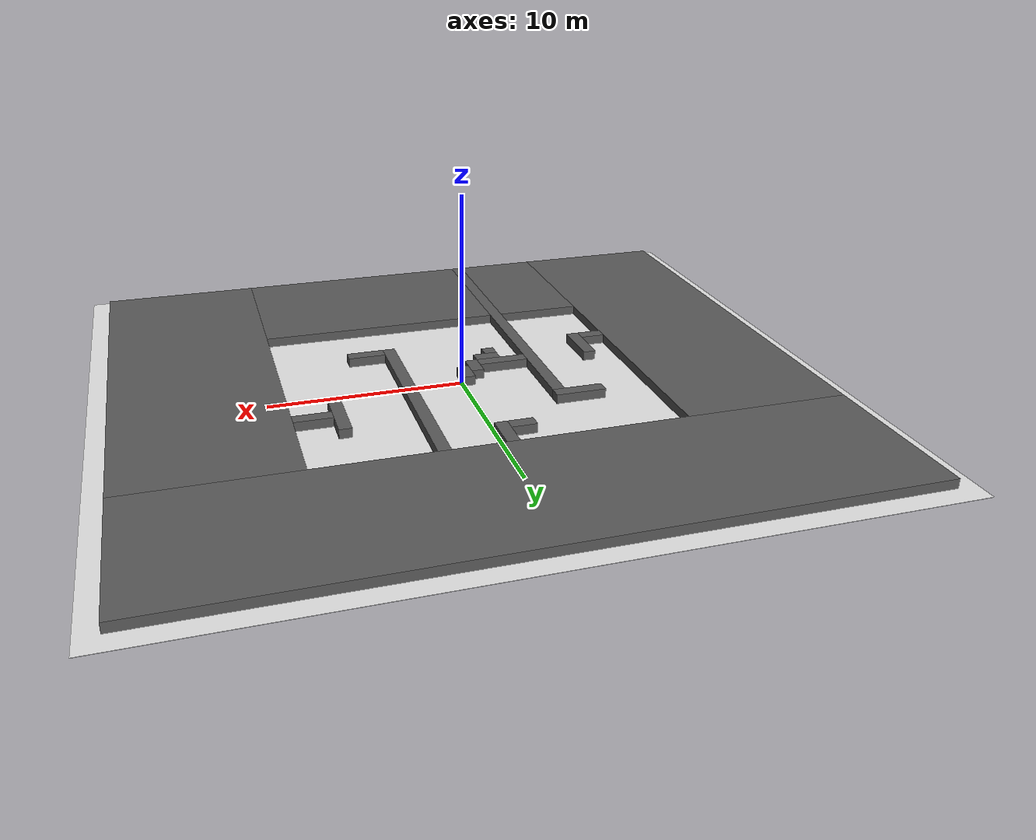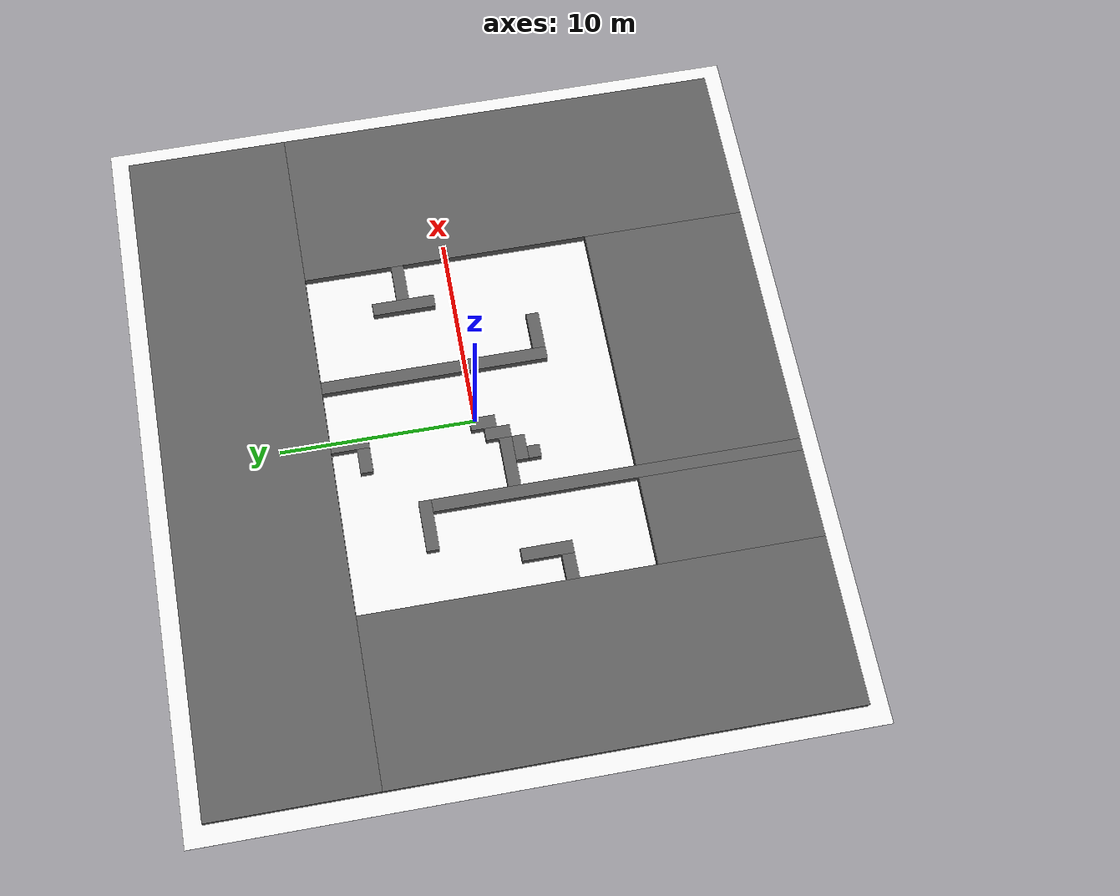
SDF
<?xml version="1.0"?>
<sdf version="1.9">
  <world name="test_map_l4">
    <plugin filename="ignition-gazebo-physics-system" name="ignition::gazebo::systems::Physics"/>
    <plugin filename="ignition-gazebo-user-commands-system" name="ignition::gazebo::systems::UserCommands"/>
    <plugin filename="ignition-gazebo-scene-broadcaster-system" name="ignition::gazebo::systems::SceneBroadcaster"/>
    <plugin filename="ignition-gazebo-sensors-system" name="ignition::gazebo::systems::Sensors">
      <render_engine>ogre2</render_engine>
    </plugin>
    <light name="sun" type="directional">
      <cast_shadows>true</cast_shadows>
      <pose>0 0 10 0 0 0</pose>
      <diffuse>0.8 0.8 0.8 1</diffuse>
      <specular>0.2 0.2 0.2 1</specular>
      <direction>-0.5 0.1 -0.9</direction>
    </light>
    <model name="ground_plane">
      <static>true</static>
      <link name="link">
        <collision name="collision">
          <geometry>
            <box><size>37.100000 33.850000 0.02</size></box>
          </geometry>
        </collision>
        <visual name="visual">
          <geometry>
            <box><size>37.100000 33.850000 0.02</size></box>
          </geometry>
          <material><ambient>0.9 0.9 0.9 1</ambient><diffuse>0.9 0.9 0.9 1</diffuse></material>
        </visual>
      </link>
    </model>
    <model name="rl_explore_obstacles">
      <static>true</static>
      <link name="wall_0000">
        <pose>0.000000 11.700000 0.250000 0 0 0</pose>
        <collision name="collision">
          <geometry>
            <box><size>35.100000 8.450000 0.500000</size></box>
          </geometry>
        </collision>
        <visual name="visual">
          <geometry>
            <box><size>35.100000 8.450000 0.500000</size></box>
          </geometry>
          <material><ambient>0.25 0.25 0.25 1</ambient><diffuse>0.35 0.35 0.35 1</diffuse></material>
        </visual>
      </link>
      <link name="wall_0001">
        <pose>-13.325000 -4.225000 0.250000 0 0 0</pose>
        <collision name="collision">
          <geometry>
            <box><size>8.450000 23.400000 0.500000</size></box>
          </geometry>
        </collision>
        <visual name="visual">
          <geometry>
            <box><size>8.450000 23.400000 0.500000</size></box>
          </geometry>
          <material><ambient>0.25 0.25 0.25 1</ambient><diffuse>0.35 0.35 0.35 1</diffuse></material>
        </visual>
      </link>
      <link name="wall_0002">
        <pose>-0.325000 6.500000 0.250000 0 0 0</pose>
        <collision name="collision">
          <geometry>
            <box><size>0.650000 1.950000 0.500000</size></box>
          </geometry>
        </collision>
        <visual name="visual">
          <geometry>
            <box><size>0.650000 1.950000 0.500000</size></box>
          </geometry>
          <material><ambient>0.25 0.25 0.25 1</ambient><diffuse>0.35 0.35 0.35 1</diffuse></material>
        </visual>
      </link>
      <link name="wall_0003">
        <pose>2.925000 1.625000 0.250000 0 0 0</pose>
        <collision name="collision">
          <geometry>
            <box><size>0.650000 11.700000 0.500000</size></box>
          </geometry>
        </collision>
        <visual name="visual">
          <geometry>
            <box><size>0.650000 11.700000 0.500000</size></box>
          </geometry>
          <material><ambient>0.25 0.25 0.25 1</ambient><diffuse>0.35 0.35 0.35 1</diffuse></material>
        </visual>
      </link>
      <link name="wall_0004">
        <pose>13.325000 -4.225000 0.250000 0 0 0</pose>
        <collision name="collision">
          <geometry>
            <box><size>8.450000 23.400000 0.500000</size></box>
          </geometry>
        </collision>
        <visual name="visual">
          <geometry>
            <box><size>8.450000 23.400000 0.500000</size></box>
          </geometry>
          <material><ambient>0.25 0.25 0.25 1</ambient><diffuse>0.35 0.35 0.35 1</diffuse></material>
        </visual>
      </link>
      <link name="wall_0005">
        <pose>-1.300000 5.850000 0.250000 0 0 0</pose>
        <collision name="collision">
          <geometry>
            <box><size>1.300000 0.650000 0.500000</size></box>
          </geometry>
        </collision>
        <visual name="visual">
          <geometry>
            <box><size>1.300000 0.650000 0.500000</size></box>
          </geometry>
          <material><ambient>0.25 0.25 0.25 1</ambient><diffuse>0.35 0.35 0.35 1</diffuse></material>
        </visual>
      </link>
      <link name="wall_0006">
        <pose>6.825000 2.600000 0.250000 0 0 0</pose>
        <collision name="collision">
          <geometry>
            <box><size>0.650000 3.250000 0.500000</size></box>
          </geometry>
        </collision>
        <visual name="visual">
          <geometry>
            <box><size>0.650000 3.250000 0.500000</size></box>
          </geometry>
          <material><ambient>0.25 0.25 0.25 1</ambient><diffuse>0.35 0.35 0.35 1</diffuse></material>
        </visual>
      </link>
      <link name="wall_0007">
        <pose>-5.200000 3.250000 0.250000 0 0 0</pose>
        <collision name="collision">
          <geometry>
            <box><size>2.600000 0.650000 0.500000</size></box>
          </geometry>
        </collision>
        <visual name="visual">
          <geometry>
            <box><size>2.600000 0.650000 0.500000</size></box>
          </geometry>
          <material><ambient>0.25 0.25 0.25 1</ambient><diffuse>0.35 0.35 0.35 1</diffuse></material>
        </visual>
      </link>
      <link name="wall_0008">
        <pose>-4.225000 -6.500000 0.250000 0 0 0</pose>
        <collision name="collision">
          <geometry>
            <box><size>0.650000 18.850000 0.500000</size></box>
          </geometry>
        </collision>
        <visual name="visual">
          <geometry>
            <box><size>0.650000 18.850000 0.500000</size></box>
          </geometry>
          <material><ambient>0.25 0.25 0.25 1</ambient><diffuse>0.35 0.35 0.35 1</diffuse></material>
        </visual>
      </link>
      <link name="wall_0009">
        <pose>8.125000 2.600000 0.250000 0 0 0</pose>
        <collision name="collision">
          <geometry>
            <box><size>1.950000 0.650000 0.500000</size></box>
          </geometry>
        </collision>
        <visual name="visual">
          <geometry>
            <box><size>1.950000 0.650000 0.500000</size></box>
          </geometry>
          <material><ambient>0.25 0.25 0.25 1</ambient><diffuse>0.35 0.35 0.35 1</diffuse></material>
        </visual>
      </link>
      <link name="wall_0010">
        <pose>-0.325000 -0.325000 0.250000 0 0 0</pose>
        <collision name="collision">
          <geometry>
            <box><size>0.650000 1.300000 0.500000</size></box>
          </geometry>
        </collision>
        <visual name="visual">
          <geometry>
            <box><size>0.650000 1.300000 0.500000</size></box>
          </geometry>
          <material><ambient>0.25 0.25 0.25 1</ambient><diffuse>0.35 0.35 0.35 1</diffuse></material>
        </visual>
      </link>
      <link name="wall_0011">
        <pose>-0.975000 -0.975000 0.250000 0 0 0</pose>
        <collision name="collision">
          <geometry>
            <box><size>0.650000 1.300000 0.500000</size></box>
          </geometry>
        </collision>
        <visual name="visual">
          <geometry>
            <box><size>0.650000 1.300000 0.500000</size></box>
          </geometry>
          <material><ambient>0.25 0.25 0.25 1</ambient><diffuse>0.35 0.35 0.35 1</diffuse></material>
        </visual>
      </link>
      <link name="wall_0012">
        <pose>-7.475000 -2.275000 0.250000 0 0 0</pose>
        <collision name="collision">
          <geometry>
            <box><size>0.650000 2.600000 0.500000</size></box>
          </geometry>
        </collision>
        <visual name="visual">
          <geometry>
            <box><size>0.650000 2.600000 0.500000</size></box>
          </geometry>
          <material><ambient>0.25 0.25 0.25 1</ambient><diffuse>0.35 0.35 0.35 1</diffuse></material>
        </visual>
      </link>
      <link name="wall_0013">
        <pose>-2.600000 -1.300000 0.250000 0 0 0</pose>
        <collision name="collision">
          <geometry>
            <box><size>2.600000 0.650000 0.500000</size></box>
          </geometry>
        </collision>
        <visual name="visual">
          <geometry>
            <box><size>2.600000 0.650000 0.500000</size></box>
          </geometry>
          <material><ambient>0.25 0.25 0.25 1</ambient><diffuse>0.35 0.35 0.35 1</diffuse></material>
        </visual>
      </link>
      <link name="wall_0014">
        <pose>-1.950000 -1.950000 0.250000 0 0 0</pose>
        <collision name="collision">
          <geometry>
            <box><size>1.300000 0.650000 0.500000</size></box>
          </geometry>
        </collision>
        <visual name="visual">
          <geometry>
            <box><size>1.300000 0.650000 0.500000</size></box>
          </geometry>
          <material><ambient>0.25 0.25 0.25 1</ambient><diffuse>0.35 0.35 0.35 1</diffuse></material>
        </visual>
      </link>
      <link name="wall_0015">
        <pose>-2.275000 -2.600000 0.250000 0 0 0</pose>
        <collision name="collision">
          <geometry>
            <box><size>0.650000 0.650000 0.500000</size></box>
          </geometry>
        </collision>
        <visual name="visual">
          <geometry>
            <box><size>0.650000 0.650000 0.500000</size></box>
          </geometry>
          <material><ambient>0.25 0.25 0.25 1</ambient><diffuse>0.35 0.35 0.35 1</diffuse></material>
        </visual>
      </link>
      <link name="wall_0016">
        <pose>-8.450000 -3.250000 0.250000 0 0 0</pose>
        <collision name="collision">
          <geometry>
            <box><size>1.300000 0.650000 0.500000</size></box>
          </geometry>
        </collision>
        <visual name="visual">
          <geometry>
            <box><size>1.300000 0.650000 0.500000</size></box>
          </geometry>
          <material><ambient>0.25 0.25 0.25 1</ambient><diffuse>0.35 0.35 0.35 1</diffuse></material>
        </visual>
      </link>
      <link name="wall_0017">
        <pose>4.225000 -3.900000 0.250000 0 0 0</pose>
        <collision name="collision">
          <geometry>
            <box><size>1.950000 0.650000 0.500000</size></box>
          </geometry>
        </collision>
        <visual name="visual">
          <geometry>
            <box><size>1.950000 0.650000 0.500000</size></box>
          </geometry>
          <material><ambient>0.25 0.25 0.25 1</ambient><diffuse>0.35 0.35 0.35 1</diffuse></material>
        </visual>
      </link>
      <link name="wall_0018">
        <pose>-6.825000 -11.700000 0.250000 0 0 0</pose>
        <collision name="collision">
          <geometry>
            <box><size>4.550000 8.450000 0.500000</size></box>
          </geometry>
        </collision>
        <visual name="visual">
          <geometry>
            <box><size>4.550000 8.450000 0.500000</size></box>
          </geometry>
          <material><ambient>0.25 0.25 0.25 1</ambient><diffuse>0.35 0.35 0.35 1</diffuse></material>
        </visual>
      </link>
      <link name="wall_0019">
        <pose>2.600000 -11.700000 0.250000 0 0 0</pose>
        <collision name="collision">
          <geometry>
            <box><size>13.000000 8.450000 0.500000</size></box>
          </geometry>
        </collision>
        <visual name="visual">
          <geometry>
            <box><size>13.000000 8.450000 0.500000</size></box>
          </geometry>
          <material><ambient>0.25 0.25 0.25 1</ambient><diffuse>0.35 0.35 0.35 1</diffuse></material>
        </visual>
      </link>
    </model>
  </world>
</sdf>
